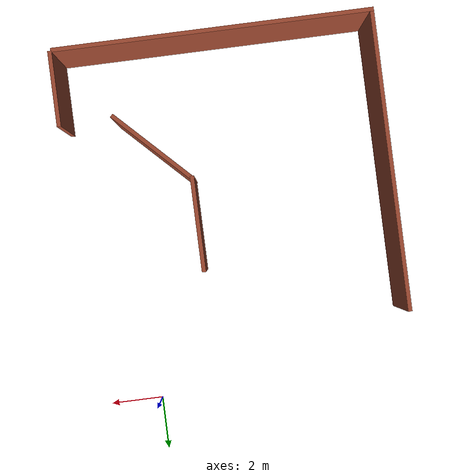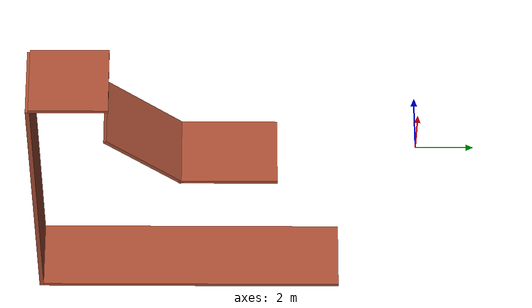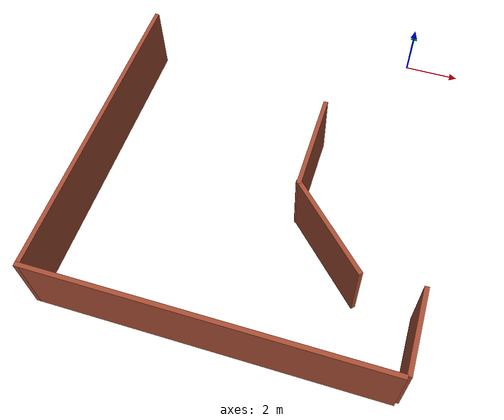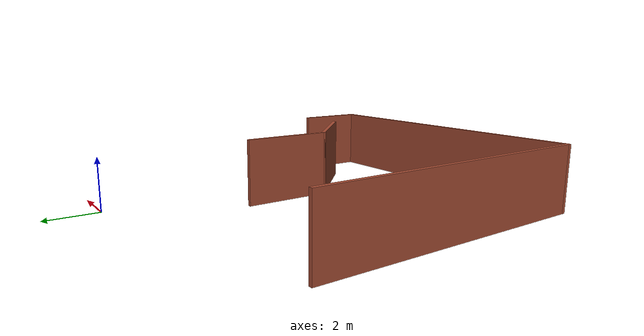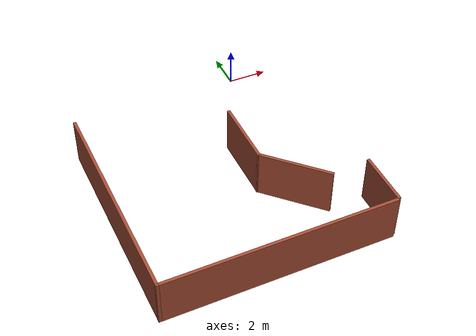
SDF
<?xml version='1.0'?>
<sdf version='1.6'>
  <model name='Storey-Hallway'>
    <pose frame=''>-3.66619 -7.94682 0 0 -0 0</pose>
    <link name='Wall_12'>
      <collision name='Wall_12_Collision'>
        <geometry>
          <box>
            <size>2.75 0.15 2.5</size>
          </box>
        </geometry>
        <pose frame=''>0 0 1.25 0 -0 0</pose>
      </collision>
      <visual name='Wall_12_Visual'>
        <pose frame=''>0 0 1.25 0 -0 0</pose>
        <geometry>
          <box>
            <size>2.75 0.15 2.5</size>
          </box>
        </geometry>
        <material>
          <script>
            <uri>file://media/materials/scripts/gazebo.material</uri>
            <name>Gazebo/Bricks</name>
          </script>
          <ambient>1 1 1 1</ambient>
        </material>
      </visual>
      <pose frame=''>5.85908 -4.05379 0 0 -0 1.5708</pose>
    </link>
    <link name='Wall_2'>
      <collision name='Wall_2_Collision'>
        <geometry>
          <box>
            <size>3.5 0.15 2.5</size>
          </box>
        </geometry>
        <pose frame=''>0 0 1.25 0 -0 0</pose>
      </collision>
      <visual name='Wall_2_Visual'>
        <pose frame=''>0 0 1.25 0 -0 0</pose>
        <geometry>
          <box>
            <size>3.5 0.15 2.5</size>
          </box>
        </geometry>
        <material>
          <script>
            <uri>file://media/materials/scripts/gazebo.material</uri>
            <name>Gazebo/Bricks</name>
          </script>
          <ambient>1 1 1 1</ambient>
        </material>
      </visual>
      <pose frame=''>1.33619 1.43182 0 0 0 -1.5708</pose>
    </link>
    <link name='Wall_3'>
      <collision name='Wall_3_Collision'>
        <geometry>
          <box>
            <size>3.75 0.15 2.5</size>
          </box>
        </geometry>
        <pose frame=''>0 0 1.25 0 -0 0</pose>
      </collision>
      <visual name='Wall_3_Visual'>
        <pose frame=''>0 0 1.25 0 -0 0</pose>
        <geometry>
          <box>
            <size>3.75 0.15 2.5</size>
          </box>
        </geometry>
        <material>
          <script>
            <uri>file://media/materials/scripts/gazebo.material</uri>
            <name>Gazebo/Bricks</name>
          </script>
          <ambient>1 1 1 1</ambient>
        </material>
      </visual>
      <pose frame=''>2.60899 -1.51597 0 0 0 -0.785398</pose>
    </link>
    <link name='Wall_5'>
      <collision name='Wall_5_Collision'>
        <geometry>
          <box>
            <size>11.75 0.15 2.5</size>
          </box>
        </geometry>
        <pose frame=''>0 0 1.25 0 -0 0</pose>
      </collision>
      <visual name='Wall_5_Visual'>
        <pose frame=''>0 0 1.25 0 -0 0</pose>
        <geometry>
          <box>
            <size>11.75 0.15 2.5</size>
          </box>
        </geometry>
        <material>
          <script>
            <uri>file://media/materials/scripts/gazebo.material</uri>
            <name>Gazebo/Bricks</name>
          </script>
          <ambient>1 1 1 1</ambient>
        </material>
      </visual>
      <pose frame=''>-0.059081 -5.45459 0 0 -0 3.14159</pose>
    </link>
    <link name='Wall_6'>
      <collision name='Wall_6_Collision'>
        <geometry>
          <box>
            <size>11.0592 0.15 2.5</size>
          </box>
        </geometry>
        <pose frame=''>0 0 1.25 0 -0 0</pose>
      </collision>
      <visual name='Wall_6_Visual'>
        <pose frame=''>0 0 1.25 0 -0 0</pose>
        <geometry>
          <box>
            <size>11.0592 0.15 2.5</size>
          </box>
        </geometry>
        <material>
          <script>
            <uri>file://media/materials/scripts/gazebo.material</uri>
            <name>Gazebo/Bricks</name>
          </script>
          <ambient>1 1 1 1</ambient>
        </material>
      </visual>
      <pose frame=''>-5.85908 0 0 0 -0 1.5708</pose>
    </link>
    <static>1</static>
  </model>
</sdf>
